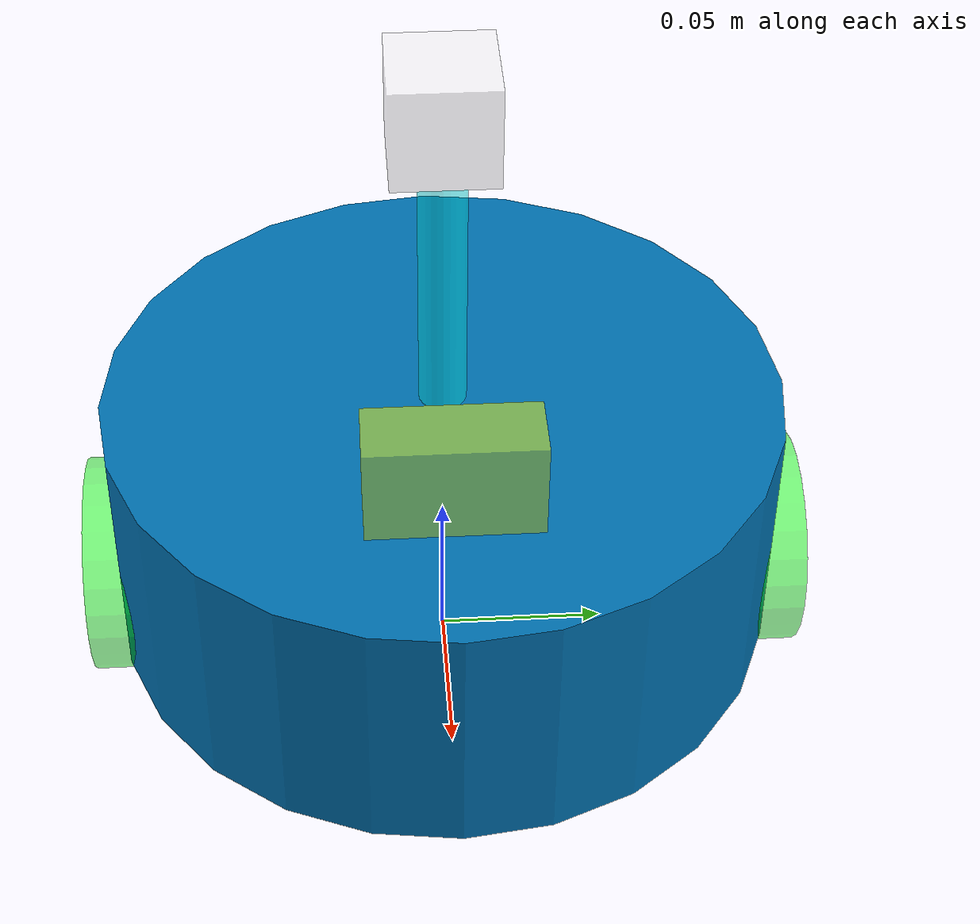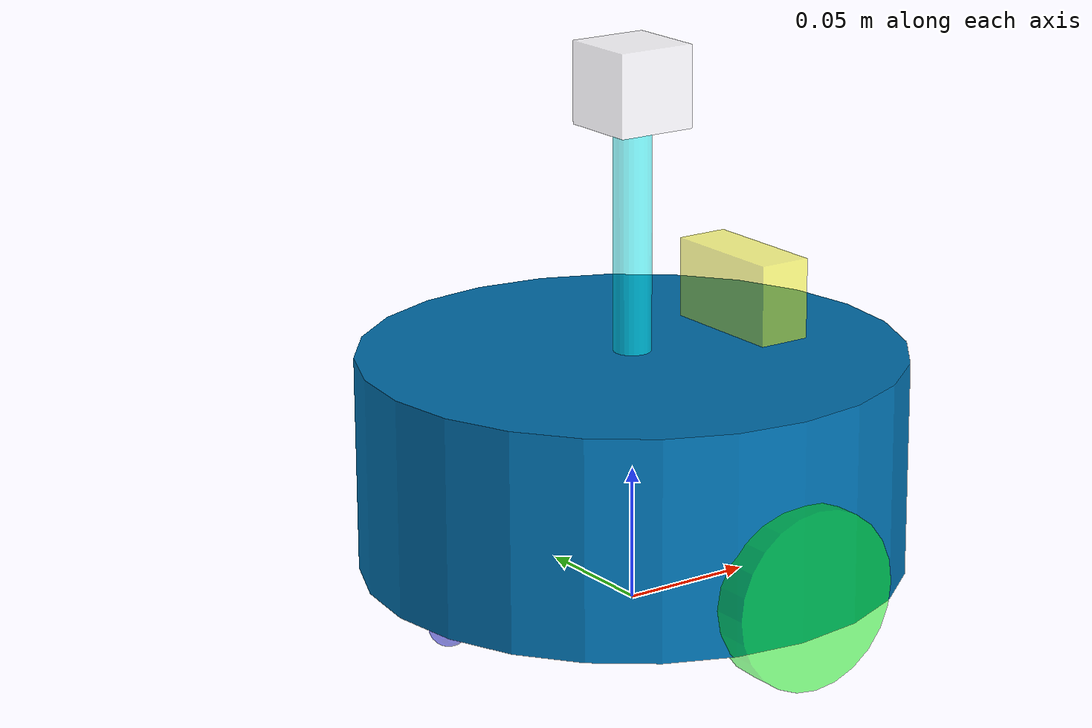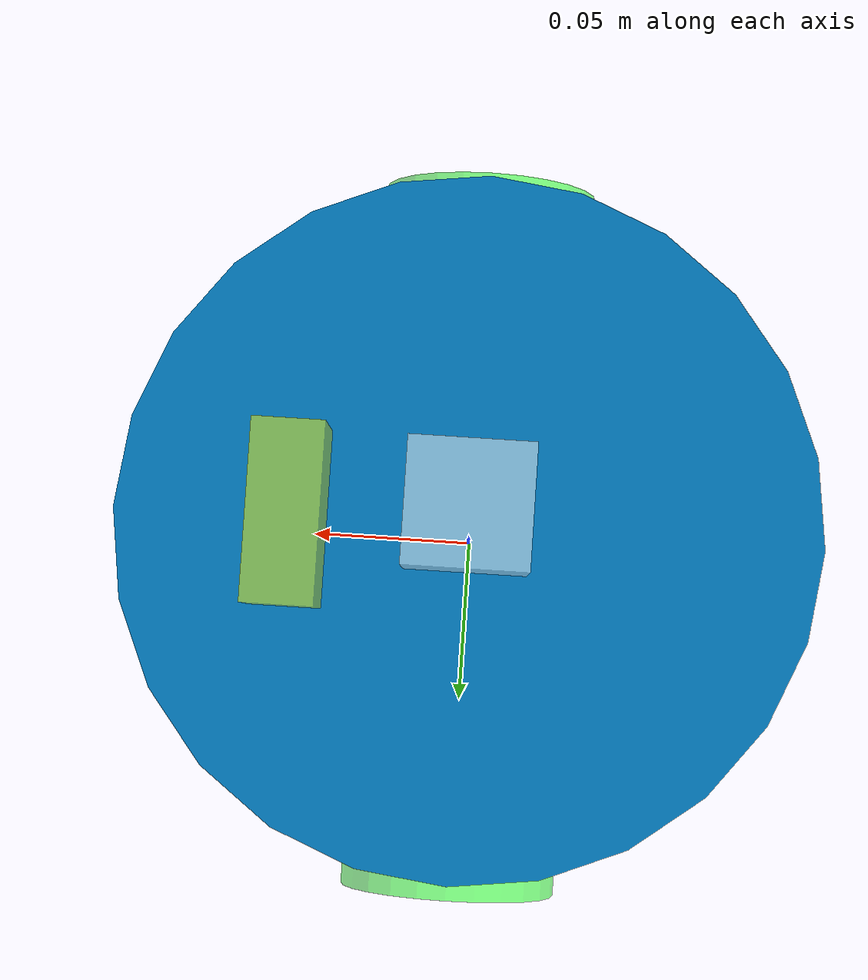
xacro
<robot name="mycar" xmlns:xacro="http://wiki.ros.org/xacro">

    <xacro:property name="footprint_radius" value="0.001" />
    <xacro:property name="link_radius" value="0.1" />
    <xacro:property name="link_length" value="0.08" />
    <xacro:property name="link_lid" value="0.015" />
    <xacro:property name="link_joint_z" value="${link_length / 2 + link_lid}" />
    <xacro:property name="wheel_radius" value="0.0325" />
    <xacro:property name="wheel_length" value="0.015" />
    <xacro:property name="PI" value="3.1415927" />
    <xacro:property name="wheel_joint_y" value="0.1" />
    <xacro:property name="wheel_joint_z" value="-0.0225" />
    <xacro:property name="ball_radius" value="0.0075" />
    <xacro:property name="ball_joint_x" value="0.08" />
    <xacro:property name="ball_joint_z" value="-0.0475" />
    <xacro:property name="camera_x" value="0.05" />
    <xacro:property name="camera_y" value="0.03" />
    <xacro:property name="camera_z" value="0.02" />

    <link name="base_footprint">
        <visual>
            <geometry>
                <sphere radius="${footprint_radius}" />
            </geometry>
        </visual>
     </link>
     <link name="camera">
        <visual>
            <geometry>
                <box size="${camera_x} ${camera_y} ${camera_z}" />
            </geometry>
            <origin xyz="0 0 0" rpy="1.5708 0 1.5708" />
            <material name="camera_color">
                <color rgba="1 1 0 0.5" />
            </material>
        </visual>
     </link>
     <link name="leida">
        <visual>
            <geometry>
                <box size="0.03 0.03 0.03" />
            </geometry>
            <origin xyz="0 0 0" rpy="0 0 0" />
            <material name="leida_color">
                <color rgba="1 1 1 0.5" />
            </material>
        </visual>
     </link>
     <link name="ganzi">
        <visual>
            <geometry>
                <cylinder radius="0.007" length="0.15" />
            </geometry>
            <origin xyz="0 0 0" rpy="0 0 0" />
            <material name="ganzi_color">
                <color rgba="0 1 1 0.5" />
            </material>
        </visual>
    </link>
     <link name="base_link">
        <visual>
            <geometry>
                <cylinder radius="${link_radius}" length="${link_length}" />
            </geometry>
        </visual>
     </link>
     <xacro:macro name="wheel" params="name flag">
     <link name="${name}_wheel">
        <visual>
            <geometry>
                <cylinder radius="${wheel_radius}" length="${wheel_length}" />
            </geometry>
            <origin xyz="0 0 0" rpy="${PI / 2} 0 0" />
            <material name="left_wheel_color">
                <color rgba="0 1 0 0.5" />
            </material>
        </visual>
     </link>
     <joint name="link2${name}" type="continuous">
        <parent link="base_link" />
        <child link="${name}_wheel" />
        <origin xyz="0 ${wheel_joint_y * flag} ${wheel_joint_z}" rpy="0 0 0" />
        <axis xyz="0 1 0" />
    </joint>
     </xacro:macro>
     <xacro:macro name="ball" params="name flag">
     <link name="${name}_ball">
        <visual>
            <geometry>
                <sphere radius="${ball_radius}" />
            </geometry>
            <origin xyz="0 0 0" rpy="0 0 0" />
            <material name="ball_colour">
                <color rgba="0 0 1 0.5" />
            </material>
        </visual>
     </link>
     <joint name="link2${name}" type="continuous">
        <parent link="base_link" />
        <child link="${name}_ball" />
        <origin xyz="${ball_joint_x * flag} 0 ${ball_joint_z}" rpy="0 0 0" />
        <axis xyz="0 1 0" />
    </joint>
     </xacro:macro>

     <joint name="footprint2link" type="fixed">
        <parent link="base_footprint" />
        <child link="base_link" />
        <origin xyz="0 0 ${link_joint_z}" rpy="0 0 0" />
    </joint>
    <joint name="link2camera" type="continuous">
        <parent link="base_link" />
        <child link="camera" />
        <origin xyz="0.05 0 0.055" rpy="0 0 0" />
        <axis xyz="0 0 1" />
    </joint>
    <joint name="link2ganzi" type="fixed">
        <parent link="base_link" />
        <child link="ganzi" />
        <origin xyz="0 0 0.0475" rpy="0 0 0" />
    </joint>
    <joint name="ganzi2leida" type="fixed">
        <parent link="ganzi" />
        <child link="leida" />
        <origin xyz="0 0 0.09" rpy="0 0 0" />
    </joint>

    <xacro:wheel name="left" flag="-1" />
    <xacro:wheel name="right" flag="1" />
    <xacro:ball name="fornt" flag="1" />
    <xacro:ball name="back" flag="-1" />

</robot>
